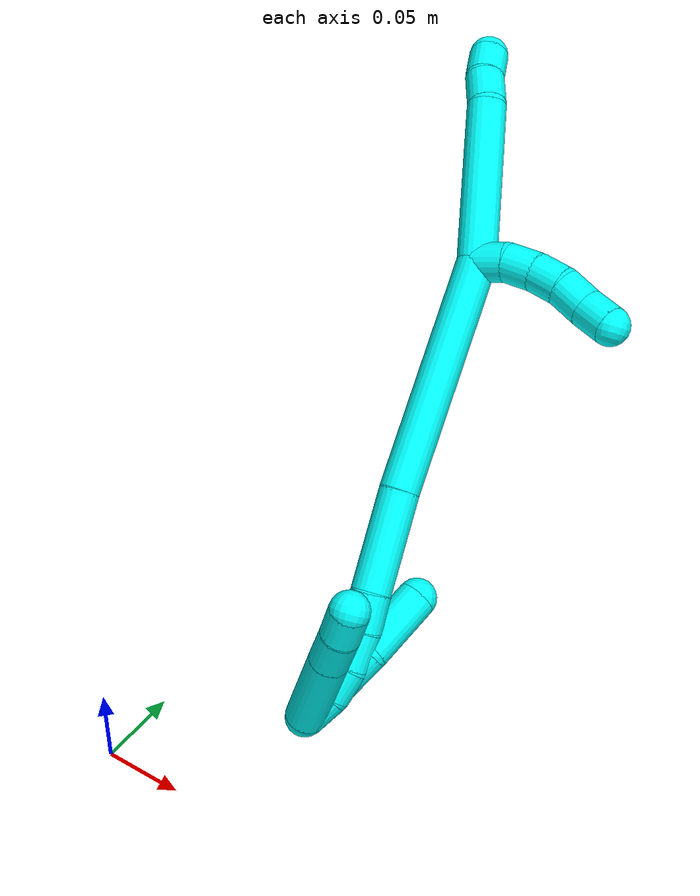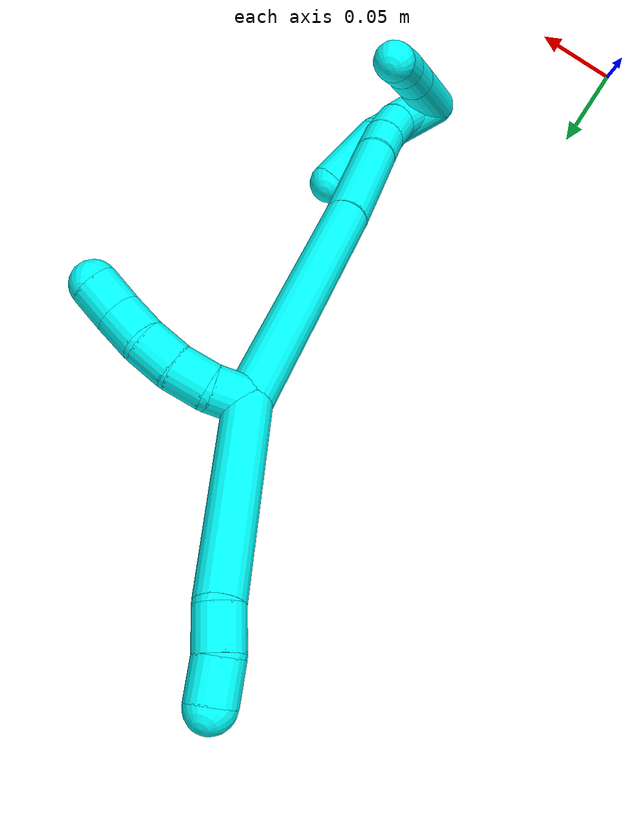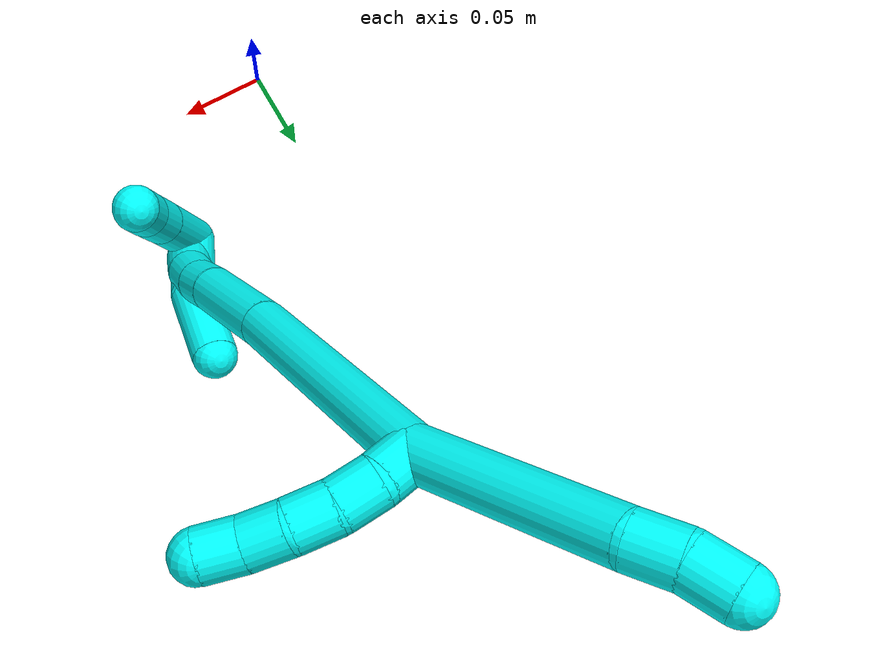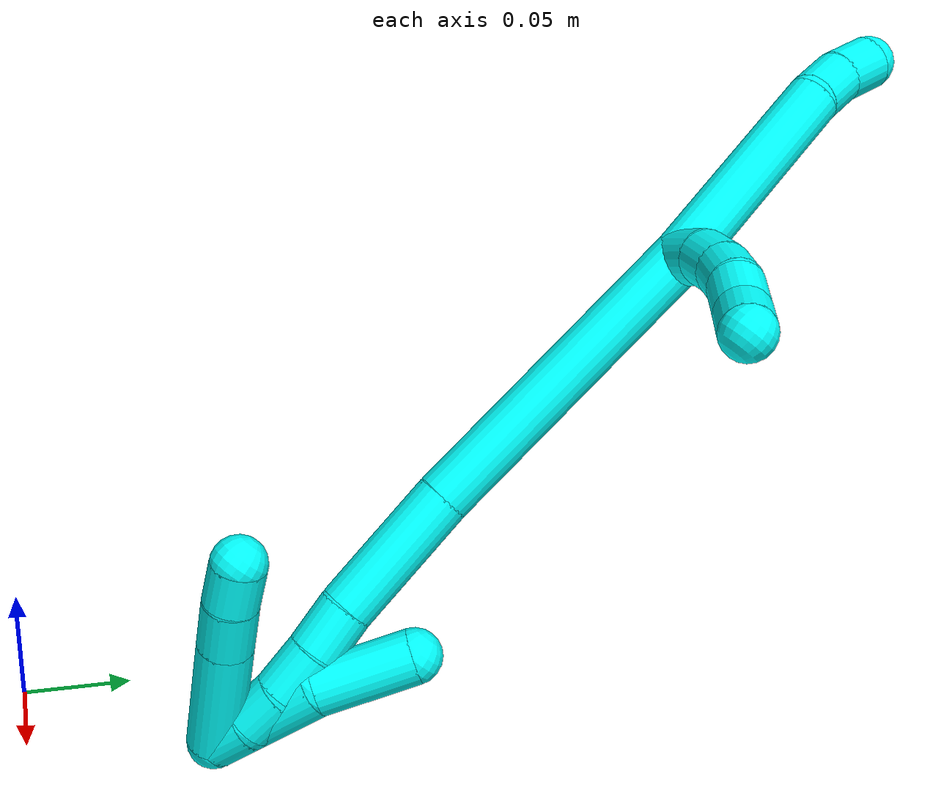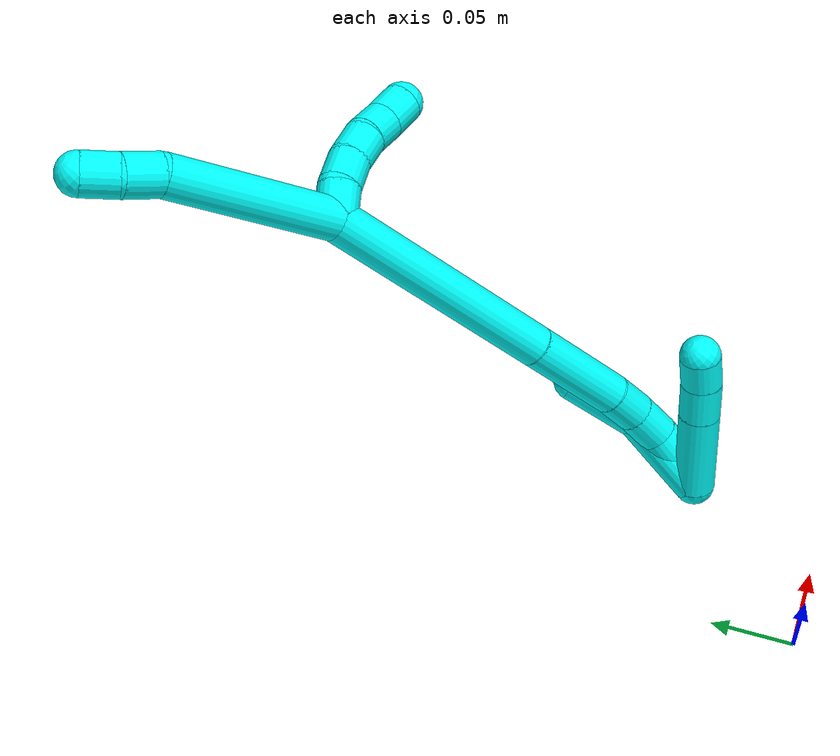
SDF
<sdf version="1.7">
 <world name="default">
  <model name="3">
   <static>0</static>
   <link name="3">
    <collision name="collision-cylinder-e_1_2_8">
     <pose>-0.019851 -0.001144 0.049362 0.023162 -0.382265 -0.004482</pose>
     <geometry><cylinder><radius>0.0125</radius><length>0.106432</length></cylinder></geometry>
     <surface>
      <friction><ode><mu>1.16</mu><mu2>1.16</mu2><slip1>0</slip1><slip2>0</slip2></ode></friction>
      <contact><ode><kp>1e+06</kp><kd>1</kd><max_vel>0</max_vel><min_depth>0.001</min_depth></ode></contact>
     </surface>
    </collision>
    <visual name="visual-cylinder-e_1_2_8">
     <pose>-0.019851 -0.001144 0.049362 0.023162 -0.382265 -0.004482</pose>
     <geometry><cylinder><radius>0.0125</radius><length>0.106432</length></cylinder></geometry>
     <material><ambient>0.003922 1 0.996078 1</ambient></material>
    </visual>
    <collision name="collision-cylinder-e_2_8_9">
     <pose>-0.04646 -0.001979 0.107542 -0.034911 -0.653587 0.011834</pose>
     <geometry><cylinder><radius>0.0125</radius><length>0.02223</length></cylinder></geometry>
     <surface>
      <friction><ode><mu>1.16</mu><mu2>1.16</mu2><slip1>0</slip1><slip2>0</slip2></ode></friction>
      <contact><ode><kp>1e+06</kp><kd>1</kd><max_vel>0</max_vel><min_depth>0.001</min_depth></ode></contact>
     </surface>
    </collision>
    <visual name="visual-cylinder-e_2_8_9">
     <pose>-0.04646 -0.001979 0.107542 -0.034911 -0.653587 0.011834</pose>
     <geometry><cylinder><radius>0.0125</radius><length>0.02223</length></cylinder></geometry>
     <material><ambient>0.003922 1 0.996078 1</ambient></material>
    </visual>
    <collision name="collision-cylinder-e_3_9_6">
     <pose>-0.059451 0.000909 0.124627 -0.302528 -0.623842 0.098221</pose>
     <geometry><cylinder><radius>0.0125</radius><length>0.021338</length></cylinder></geometry>
     <surface>
      <friction><ode><mu>1.16</mu><mu2>1.16</mu2><slip1>0</slip1><slip2>0</slip2></ode></friction>
      <contact><ode><kp>1e+06</kp><kd>1</kd><max_vel>0</max_vel><min_depth>0.001</min_depth></ode></contact>
     </surface>
    </collision>
    <visual name="visual-cylinder-e_3_9_6">
     <pose>-0.059451 0.000909 0.124627 -0.302528 -0.623842 0.098221</pose>
     <geometry><cylinder><radius>0.0125</radius><length>0.021338</length></cylinder></geometry>
     <material><ambient>0.003922 1 0.996078 1</ambient></material>
    </visual>
    <collision name="collision-cylinder-e_1_2_10">
     <pose>0.007933 0.005642 0.002288 -1.18547 0.91618 -0.641276</pose>
     <geometry><cylinder><radius>0.0125</radius><length>0.02</length></cylinder></geometry>
     <surface>
      <friction><ode><mu>1.16</mu><mu2>1.16</mu2><slip1>0</slip1><slip2>0</slip2></ode></friction>
      <contact><ode><kp>1e+06</kp><kd>1</kd><max_vel>0</max_vel><min_depth>0.001</min_depth></ode></contact>
     </surface>
    </collision>
    <visual name="visual-cylinder-e_1_2_10">
     <pose>0.007933 0.005642 0.002288 -1.18547 0.91618 -0.641276</pose>
     <geometry><cylinder><radius>0.0125</radius><length>0.02</length></cylinder></geometry>
     <material><ambient>0.003922 1 0.996078 1</ambient></material>
    </visual>
    <collision name="collision-cylinder-e_2_10_11">
     <pose>0.023731 0.017426 0.00393 -1.67573 0.905184 -0.990513</pose>
     <geometry><cylinder><radius>0.0125</radius><length>0.02</length></cylinder></geometry>
     <surface>
      <friction><ode><mu>1.16</mu><mu2>1.16</mu2><slip1>0</slip1><slip2>0</slip2></ode></friction>
      <contact><ode><kp>1e+06</kp><kd>1</kd><max_vel>0</max_vel><min_depth>0.001</min_depth></ode></contact>
     </surface>
    </collision>
    <visual name="visual-cylinder-e_2_10_11">
     <pose>0.023731 0.017426 0.00393 -1.67573 0.905184 -0.990513</pose>
     <geometry><cylinder><radius>0.0125</radius><length>0.02</length></cylinder></geometry>
     <material><ambient>0.003922 1 0.996078 1</ambient></material>
    </visual>
    <collision name="collision-cylinder-e_3_11_12">
     <pose>0.0398 0.028851 0.001099 -1.96277 0.962102 -1.32553</pose>
     <geometry><cylinder><radius>0.0125</radius><length>0.02</length></cylinder></geometry>
     <surface>
      <friction><ode><mu>1.16</mu><mu2>1.16</mu2><slip1>0</slip1><slip2>0</slip2></ode></friction>
      <contact><ode><kp>1e+06</kp><kd>1</kd><max_vel>0</max_vel><min_depth>0.001</min_depth></ode></contact>
     </surface>
    </collision>
    <visual name="visual-cylinder-e_3_11_12">
     <pose>0.0398 0.028851 0.001099 -1.96277 0.962102 -1.32553</pose>
     <geometry><cylinder><radius>0.0125</radius><length>0.02</length></cylinder></geometry>
     <material><ambient>0.003922 1 0.996078 1</ambient></material>
    </visual>
    <collision name="collision-cylinder-e_4_12_13">
     <pose>0.055211 0.039564 -0.005397 -2.24202 0.804825 -1.44514</pose>
     <geometry><cylinder><radius>0.0125</radius><length>0.02</length></cylinder></geometry>
     <surface>
      <friction><ode><mu>1.16</mu><mu2>1.16</mu2><slip1>0</slip1><slip2>0</slip2></ode></friction>
      <contact><ode><kp>1e+06</kp><kd>1</kd><max_vel>0</max_vel><min_depth>0.001</min_depth></ode></contact>
     </surface>
    </collision>
    <visual name="visual-cylinder-e_4_12_13">
     <pose>0.055211 0.039564 -0.005397 -2.24202 0.804825 -1.44514</pose>
     <geometry><cylinder><radius>0.0125</radius><length>0.02</length></cylinder></geometry>
     <material><ambient>0.003922 1 0.996078 1</ambient></material>
    </visual>
    <collision name="collision-cylinder-e_5_13_5">
     <pose>0.070817 0.049218 -0.013115 -2.24926 0.997053 -1.69979</pose>
     <geometry><cylinder><radius>0.0125</radius><length>0.02</length></cylinder></geometry>
     <surface>
      <friction><ode><mu>1.16</mu><mu2>1.16</mu2><slip1>0</slip1><slip2>0</slip2></ode></friction>
      <contact><ode><kp>1e+06</kp><kd>1</kd><max_vel>0</max_vel><min_depth>0.001</min_depth></ode></contact>
     </surface>
    </collision>
    <visual name="visual-cylinder-e_5_13_5">
     <pose>0.070817 0.049218 -0.013115 -2.24926 0.997053 -1.69979</pose>
     <geometry><cylinder><radius>0.0125</radius><length>0.02</length></cylinder></geometry>
     <material><ambient>0.003922 1 0.996078 1</ambient></material>
    </visual>
    <collision name="collision-cylinder-e_1_2_14">
     <pose>0.00811 -0.00809 -0.073503 3.03197 0.109241 1.5673</pose>
     <geometry><cylinder><radius>0.0125</radius><length>0.148781</length></cylinder></geometry>
     <surface>
      <friction><ode><mu>1.16</mu><mu2>1.16</mu2><slip1>0</slip1><slip2>0</slip2></ode></friction>
      <contact><ode><kp>1e+06</kp><kd>1</kd><max_vel>0</max_vel><min_depth>0.001</min_depth></ode></contact>
     </surface>
    </collision>
    <visual name="visual-cylinder-e_1_2_14">
     <pose>0.00811 -0.00809 -0.073503 3.03197 0.109241 1.5673</pose>
     <geometry><cylinder><radius>0.0125</radius><length>0.148781</length></cylinder></geometry>
     <material><ambient>0.003922 1 0.996078 1</ambient></material>
    </visual>
    <collision name="collision-cylinder-e_2_14_15">
     <pose>0.019659 -0.017708 -0.178467 3.09308 0.108723 2.30273</pose>
     <geometry><cylinder><radius>0.0125</radius><length>0.063369</length></cylinder></geometry>
     <surface>
      <friction><ode><mu>1.16</mu><mu2>1.16</mu2><slip1>0</slip1><slip2>0</slip2></ode></friction>
      <contact><ode><kp>1e+06</kp><kd>1</kd><max_vel>0</max_vel><min_depth>0.001</min_depth></ode></contact>
     </surface>
    </collision>
    <visual name="visual-cylinder-e_2_14_15">
     <pose>0.019659 -0.017708 -0.178467 3.09308 0.108723 2.30273</pose>
     <geometry><cylinder><radius>0.0125</radius><length>0.063369</length></cylinder></geometry>
     <material><ambient>0.003922 1 0.996078 1</ambient></material>
    </visual>
    <collision name="collision-cylinder-e_3_15_16">
     <pose>0.023508 -0.018834 -0.221617 -3.10729 0.035105 -1.5939</pose>
     <geometry><cylinder><radius>0.0125</radius><length>0.023407</length></cylinder></geometry>
     <surface>
      <friction><ode><mu>1.16</mu><mu2>1.16</mu2><slip1>0</slip1><slip2>0</slip2></ode></friction>
      <contact><ode><kp>1e+06</kp><kd>1</kd><max_vel>0</max_vel><min_depth>0.001</min_depth></ode></contact>
     </surface>
    </collision>
    <visual name="visual-cylinder-e_3_15_16">
     <pose>0.023508 -0.018834 -0.221617 -3.10729 0.035105 -1.5939</pose>
     <geometry><cylinder><radius>0.0125</radius><length>0.023407</length></cylinder></geometry>
     <material><ambient>0.003922 1 0.996078 1</ambient></material>
    </visual>
    <collision name="collision-cylinder-e_4_16_17">
     <pose>0.02337 -0.019003 -0.245072 3.0932 -0.046507 -1.53113</pose>
     <geometry><cylinder><radius>0.0125</radius><length>0.023586</length></cylinder></geometry>
     <surface>
      <friction><ode><mu>1.16</mu><mu2>1.16</mu2><slip1>0</slip1><slip2>0</slip2></ode></friction>
      <contact><ode><kp>1e+06</kp><kd>1</kd><max_vel>0</max_vel><min_depth>0.001</min_depth></ode></contact>
     </surface>
    </collision>
    <visual name="visual-cylinder-e_4_16_17">
     <pose>0.02337 -0.019003 -0.245072 3.0932 -0.046507 -1.53113</pose>
     <geometry><cylinder><radius>0.0125</radius><length>0.023586</length></cylinder></geometry>
     <material><ambient>0.003922 1 0.996078 1</ambient></material>
    </visual>
    <collision name="collision-cylinder-e_5_17_18">
     <pose>0.020799 -0.021633 -0.266593 2.93341 -0.200229 -1.53157</pose>
     <geometry><cylinder><radius>0.0125</radius><length>0.020345</length></cylinder></geometry>
     <surface>
      <friction><ode><mu>1.16</mu><mu2>1.16</mu2><slip1>0</slip1><slip2>0</slip2></ode></friction>
      <contact><ode><kp>1e+06</kp><kd>1</kd><max_vel>0</max_vel><min_depth>0.001</min_depth></ode></contact>
     </surface>
    </collision>
    <visual name="visual-cylinder-e_5_17_18">
     <pose>0.020799 -0.021633 -0.266593 2.93341 -0.200229 -1.53157</pose>
     <geometry><cylinder><radius>0.0125</radius><length>0.020345</length></cylinder></geometry>
     <material><ambient>0.003922 1 0.996078 1</ambient></material>
    </visual>
    <collision name="collision-cylinder-e_6_18_1">
     <pose>0.015597 -0.028125 -0.285033 2.6699 -0.315107 -1.16825</pose>
     <geometry><cylinder><radius>0.0125</radius><length>0.020512</length></cylinder></geometry>
     <surface>
      <friction><ode><mu>1.16</mu><mu2>1.16</mu2><slip1>0</slip1><slip2>0</slip2></ode></friction>
      <contact><ode><kp>1e+06</kp><kd>1</kd><max_vel>0</max_vel><min_depth>0.001</min_depth></ode></contact>
     </surface>
    </collision>
    <visual name="visual-cylinder-e_6_18_1">
     <pose>0.015597 -0.028125 -0.285033 2.6699 -0.315107 -1.16825</pose>
     <geometry><cylinder><radius>0.0125</radius><length>0.020512</length></cylinder></geometry>
     <material><ambient>0.003922 1 0.996078 1</ambient></material>
    </visual>
    <collision name="collision-cylinder-e_1_1_19">
     <pose>0.017513 -0.020533 -0.269581 -0.462085 0.186721 -0.044046</pose>
     <geometry><cylinder><radius>0.0125</radius><length>0.054887</length></cylinder></geometry>
     <surface>
      <friction><ode><mu>1.16</mu><mu2>1.16</mu2><slip1>0</slip1><slip2>0</slip2></ode></friction>
      <contact><ode><kp>1e+06</kp><kd>1</kd><max_vel>0</max_vel><min_depth>0.001</min_depth></ode></contact>
     </surface>
    </collision>
    <visual name="visual-cylinder-e_1_1_19">
     <pose>0.017513 -0.020533 -0.269581 -0.462085 0.186721 -0.044046</pose>
     <geometry><cylinder><radius>0.0125</radius><length>0.054887</length></cylinder></geometry>
     <material><ambient>0.003922 1 0.996078 1</ambient></material>
    </visual>
    <collision name="collision-cylinder-e_2_19_4">
     <pose>0.020014 0.00393 -0.226807 -0.588656 -0.115224 0.034963</pose>
     <geometry><cylinder><radius>0.0125</radius><length>0.045113</length></cylinder></geometry>
     <surface>
      <friction><ode><mu>1.16</mu><mu2>1.16</mu2><slip1>0</slip1><slip2>0</slip2></ode></friction>
      <contact><ode><kp>1e+06</kp><kd>1</kd><max_vel>0</max_vel><min_depth>0.001</min_depth></ode></contact>
     </surface>
    </collision>
    <visual name="visual-cylinder-e_2_19_4">
     <pose>0.020014 0.00393 -0.226807 -0.588656 -0.115224 0.034963</pose>
     <geometry><cylinder><radius>0.0125</radius><length>0.045113</length></cylinder></geometry>
     <material><ambient>0.003922 1 0.996078 1</ambient></material>
    </visual>
    <collision name="collision-cylinder-e_1_1_20">
     <pose>0.029205 -0.039576 -0.272366 0.317659 0.641457 0.106322</pose>
     <geometry><cylinder><radius>0.0125</radius><length>0.056109</length></cylinder></geometry>
     <surface>
      <friction><ode><mu>1.16</mu><mu2>1.16</mu2><slip1>0</slip1><slip2>0</slip2></ode></friction>
      <contact><ode><kp>1e+06</kp><kd>1</kd><max_vel>0</max_vel><min_depth>0.001</min_depth></ode></contact>
     </surface>
    </collision>
    <visual name="visual-cylinder-e_1_1_20">
     <pose>0.029205 -0.039576 -0.272366 0.317659 0.641457 0.106322</pose>
     <geometry><cylinder><radius>0.0125</radius><length>0.056109</length></cylinder></geometry>
     <material><ambient>0.003922 1 0.996078 1</ambient></material>
    </visual>
    <collision name="collision-cylinder-e_2_20_21">
     <pose>0.053171 -0.049444 -0.241938 0.303979 0.646596 0.102551</pose>
     <geometry><cylinder><radius>0.0125</radius><length>0.023832</length></cylinder></geometry>
     <surface>
      <friction><ode><mu>1.16</mu><mu2>1.16</mu2><slip1>0</slip1><slip2>0</slip2></ode></friction>
      <contact><ode><kp>1e+06</kp><kd>1</kd><max_vel>0</max_vel><min_depth>0.001</min_depth></ode></contact>
     </surface>
    </collision>
    <visual name="visual-cylinder-e_2_20_21">
     <pose>0.053171 -0.049444 -0.241938 0.303979 0.646596 0.102551</pose>
     <geometry><cylinder><radius>0.0125</radius><length>0.023832</length></cylinder></geometry>
     <material><ambient>0.003922 1 0.996078 1</ambient></material>
    </visual>
    <collision name="collision-cylinder-e_3_21_3">
     <pose>0.065569 -0.054555 -0.224603 0.267602 0.547279 0.075526</pose>
     <geometry><cylinder><radius>0.0125</radius><length>0.020059</length></cylinder></geometry>
     <surface>
      <friction><ode><mu>1.16</mu><mu2>1.16</mu2><slip1>0</slip1><slip2>0</slip2></ode></friction>
      <contact><ode><kp>1e+06</kp><kd>1</kd><max_vel>0</max_vel><min_depth>0.001</min_depth></ode></contact>
     </surface>
    </collision>
    <visual name="visual-cylinder-e_3_21_3">
     <pose>0.065569 -0.054555 -0.224603 0.267602 0.547279 0.075526</pose>
     <geometry><cylinder><radius>0.0125</radius><length>0.020059</length></cylinder></geometry>
     <material><ambient>0.003922 1 0.996078 1</ambient></material>
    </visual>
    <collision name="collision-sphere-3">
     <pose>0.070788 -0.05682 -0.216344 0 -0 0</pose>
     <geometry><sphere><radius>0.0125</radius></sphere></geometry>
     <surface>
      <friction><ode><mu>1.16</mu><mu2>1.16</mu2><slip1>0</slip1><slip2>0</slip2></ode></friction>
      <contact><ode><kp>1e+06</kp><kd>1</kd><max_vel>0</max_vel><min_depth>0.001</min_depth></ode></contact>
     </surface>
    </collision>
    <visual name="visual-sphere-3">
     <pose>0.070788 -0.05682 -0.216344 0 -0 0</pose>
     <geometry><sphere><radius>0.0125</radius></sphere></geometry>
     <material><ambient>0.003922 1 0.996078 1</ambient></material>
    </visual>
    <collision name="collision-sphere-21">
     <pose>0.06035 -0.052291 -0.232863 0 -0 0</pose>
     <geometry><sphere><radius>0.0125</radius></sphere></geometry>
     <surface>
      <friction><ode><mu>1.16</mu><mu2>1.16</mu2><slip1>0</slip1><slip2>0</slip2></ode></friction>
      <contact><ode><kp>1e+06</kp><kd>1</kd><max_vel>0</max_vel><min_depth>0.001</min_depth></ode></contact>
     </surface>
    </collision>
    <visual name="visual-sphere-21">
     <pose>0.06035 -0.052291 -0.232863 0 -0 0</pose>
     <geometry><sphere><radius>0.0125</radius></sphere></geometry>
     <material><ambient>0.003922 1 0.996078 1</ambient></material>
    </visual>
    <collision name="collision-sphere-20">
     <pose>0.045992 -0.046597 -0.251012 0 -0 0</pose>
     <geometry><sphere><radius>0.0125</radius></sphere></geometry>
     <surface>
      <friction><ode><mu>1.16</mu><mu2>1.16</mu2><slip1>0</slip1><slip2>0</slip2></ode></friction>
      <contact><ode><kp>1e+06</kp><kd>1</kd><max_vel>0</max_vel><min_depth>0.001</min_depth></ode></contact>
     </surface>
    </collision>
    <visual name="visual-sphere-20">
     <pose>0.045992 -0.046597 -0.251012 0 -0 0</pose>
     <geometry><sphere><radius>0.0125</radius></sphere></geometry>
     <material><ambient>0.003922 1 0.996078 1</ambient></material>
    </visual>
    <collision name="collision-sphere-4">
     <pose>0.017421 0.016371 -0.208171 0 -0 0</pose>
     <geometry><sphere><radius>0.0125</radius></sphere></geometry>
     <surface>
      <friction><ode><mu>1.16</mu><mu2>1.16</mu2><slip1>0</slip1><slip2>0</slip2></ode></friction>
      <contact><ode><kp>1e+06</kp><kd>1</kd><max_vel>0</max_vel><min_depth>0.001</min_depth></ode></contact>
     </surface>
    </collision>
    <visual name="visual-sphere-4">
     <pose>0.017421 0.016371 -0.208171 0 -0 0</pose>
     <geometry><sphere><radius>0.0125</radius></sphere></geometry>
     <material><ambient>0.003922 1 0.996078 1</ambient></material>
    </visual>
    <collision name="collision-sphere-11">
     <pose>0.031596 0.023567 0.003283 0 -0 0</pose>
     <geometry><sphere><radius>0.0125</radius></sphere></geometry>
     <surface>
      <friction><ode><mu>1.16</mu><mu2>1.16</mu2><slip1>0</slip1><slip2>0</slip2></ode></friction>
      <contact><ode><kp>1e+06</kp><kd>1</kd><max_vel>0</max_vel><min_depth>0.001</min_depth></ode></contact>
     </surface>
    </collision>
    <visual name="visual-sphere-11">
     <pose>0.031596 0.023567 0.003283 0 -0 0</pose>
     <geometry><sphere><radius>0.0125</radius></sphere></geometry>
     <material><ambient>0.003922 1 0.996078 1</ambient></material>
    </visual>
    <collision name="collision-sphere-10">
     <pose>0.015866 0.011284 0.004577 0 -0 0</pose>
     <geometry><sphere><radius>0.0125</radius></sphere></geometry>
     <surface>
      <friction><ode><mu>1.16</mu><mu2>1.16</mu2><slip1>0</slip1><slip2>0</slip2></ode></friction>
      <contact><ode><kp>1e+06</kp><kd>1</kd><max_vel>0</max_vel><min_depth>0.001</min_depth></ode></contact>
     </surface>
    </collision>
    <visual name="visual-sphere-10">
     <pose>0.015866 0.011284 0.004577 0 -0 0</pose>
     <geometry><sphere><radius>0.0125</radius></sphere></geometry>
     <material><ambient>0.003922 1 0.996078 1</ambient></material>
    </visual>
    <collision name="collision-sphere-6">
     <pose>-0.065683 0.003489 0.132894 0 -0 0</pose>
     <geometry><sphere><radius>0.0125</radius></sphere></geometry>
     <surface>
      <friction><ode><mu>1.16</mu><mu2>1.16</mu2><slip1>0</slip1><slip2>0</slip2></ode></friction>
      <contact><ode><kp>1e+06</kp><kd>1</kd><max_vel>0</max_vel><min_depth>0.001</min_depth></ode></contact>
     </surface>
    </collision>
    <visual name="visual-sphere-6">
     <pose>-0.065683 0.003489 0.132894 0 -0 0</pose>
     <geometry><sphere><radius>0.0125</radius></sphere></geometry>
     <material><ambient>0.003922 1 0.996078 1</ambient></material>
    </visual>
    <collision name="collision-sphere-9">
     <pose>-0.053218 -0.001671 0.116361 0 -0 0</pose>
     <geometry><sphere><radius>0.0125</radius></sphere></geometry>
     <surface>
      <friction><ode><mu>1.16</mu><mu2>1.16</mu2><slip1>0</slip1><slip2>0</slip2></ode></friction>
      <contact><ode><kp>1e+06</kp><kd>1</kd><max_vel>0</max_vel><min_depth>0.001</min_depth></ode></contact>
     </surface>
    </collision>
    <visual name="visual-sphere-9">
     <pose>-0.053218 -0.001671 0.116361 0 -0 0</pose>
     <geometry><sphere><radius>0.0125</radius></sphere></geometry>
     <material><ambient>0.003922 1 0.996078 1</ambient></material>
    </visual>
    <collision name="collision-sphere-2">
     <geometry><sphere><radius>0.0125</radius></sphere></geometry>
     <surface>
      <friction><ode><mu>1.16</mu><mu2>1.16</mu2><slip1>0</slip1><slip2>0</slip2></ode></friction>
      <contact><ode><kp>1e+06</kp><kd>1</kd><max_vel>0</max_vel><min_depth>0.001</min_depth></ode></contact>
     </surface>
    </collision>
    <visual name="visual-sphere-2">
     <geometry><sphere><radius>0.0125</radius></sphere></geometry>
     <material><ambient>0.003922 1 0.996078 1</ambient></material>
    </visual>
    <collision name="collision-sphere-19">
     <pose>0.022607 -0.008511 -0.245443 0 -0 0</pose>
     <geometry><sphere><radius>0.0125</radius></sphere></geometry>
     <surface>
      <friction><ode><mu>1.16</mu><mu2>1.16</mu2><slip1>0</slip1><slip2>0</slip2></ode></friction>
      <contact><ode><kp>1e+06</kp><kd>1</kd><max_vel>0</max_vel><min_depth>0.001</min_depth></ode></contact>
     </surface>
    </collision>
    <visual name="visual-sphere-19">
     <pose>0.022607 -0.008511 -0.245443 0 -0 0</pose>
     <geometry><sphere><radius>0.0125</radius></sphere></geometry>
     <material><ambient>0.003922 1 0.996078 1</ambient></material>
    </visual>
    <collision name="collision-sphere-8">
     <pose>-0.039701 -0.002287 0.098723 0 -0 0</pose>
     <geometry><sphere><radius>0.0125</radius></sphere></geometry>
     <surface>
      <friction><ode><mu>1.16</mu><mu2>1.16</mu2><slip1>0</slip1><slip2>0</slip2></ode></friction>
      <contact><ode><kp>1e+06</kp><kd>1</kd><max_vel>0</max_vel><min_depth>0.001</min_depth></ode></contact>
     </surface>
    </collision>
    <visual name="visual-sphere-8">
     <pose>-0.039701 -0.002287 0.098723 0 -0 0</pose>
     <geometry><sphere><radius>0.0125</radius></sphere></geometry>
     <material><ambient>0.003922 1 0.996078 1</ambient></material>
    </visual>
    <collision name="collision-sphere-12">
     <pose>0.048004 0.034136 -0.001086 0 -0 0</pose>
     <geometry><sphere><radius>0.0125</radius></sphere></geometry>
     <surface>
      <friction><ode><mu>1.16</mu><mu2>1.16</mu2><slip1>0</slip1><slip2>0</slip2></ode></friction>
      <contact><ode><kp>1e+06</kp><kd>1</kd><max_vel>0</max_vel><min_depth>0.001</min_depth></ode></contact>
     </surface>
    </collision>
    <visual name="visual-sphere-12">
     <pose>0.048004 0.034136 -0.001086 0 -0 0</pose>
     <geometry><sphere><radius>0.0125</radius></sphere></geometry>
     <material><ambient>0.003922 1 0.996078 1</ambient></material>
    </visual>
    <collision name="collision-sphere-13">
     <pose>0.062419 0.044993 -0.009709 0 -0 0</pose>
     <geometry><sphere><radius>0.0125</radius></sphere></geometry>
     <surface>
      <friction><ode><mu>1.16</mu><mu2>1.16</mu2><slip1>0</slip1><slip2>0</slip2></ode></friction>
      <contact><ode><kp>1e+06</kp><kd>1</kd><max_vel>0</max_vel><min_depth>0.001</min_depth></ode></contact>
     </surface>
    </collision>
    <visual name="visual-sphere-13">
     <pose>0.062419 0.044993 -0.009709 0 -0 0</pose>
     <geometry><sphere><radius>0.0125</radius></sphere></geometry>
     <material><ambient>0.003922 1 0.996078 1</ambient></material>
    </visual>
    <collision name="collision-sphere-5">
     <pose>0.079216 0.053444 -0.016522 0 -0 0</pose>
     <geometry><sphere><radius>0.0125</radius></sphere></geometry>
     <surface>
      <friction><ode><mu>1.16</mu><mu2>1.16</mu2><slip1>0</slip1><slip2>0</slip2></ode></friction>
      <contact><ode><kp>1e+06</kp><kd>1</kd><max_vel>0</max_vel><min_depth>0.001</min_depth></ode></contact>
     </surface>
    </collision>
    <visual name="visual-sphere-5">
     <pose>0.079216 0.053444 -0.016522 0 -0 0</pose>
     <geometry><sphere><radius>0.0125</radius></sphere></geometry>
     <material><ambient>0.003922 1 0.996078 1</ambient></material>
    </visual>
    <collision name="collision-sphere-14">
     <pose>0.016221 -0.01618 -0.147007 0 -0 0</pose>
     <geometry><sphere><radius>0.0125</radius></sphere></geometry>
     <surface>
      <friction><ode><mu>1.16</mu><mu2>1.16</mu2><slip1>0</slip1><slip2>0</slip2></ode></friction>
      <contact><ode><kp>1e+06</kp><kd>1</kd><max_vel>0</max_vel><min_depth>0.001</min_depth></ode></contact>
     </surface>
    </collision>
    <visual name="visual-sphere-14">
     <pose>0.016221 -0.01618 -0.147007 0 -0 0</pose>
     <geometry><sphere><radius>0.0125</radius></sphere></geometry>
     <material><ambient>0.003922 1 0.996078 1</ambient></material>
    </visual>
    <collision name="collision-sphere-15">
     <pose>0.023097 -0.019235 -0.209928 0 -0 0</pose>
     <geometry><sphere><radius>0.0125</radius></sphere></geometry>
     <surface>
      <friction><ode><mu>1.16</mu><mu2>1.16</mu2><slip1>0</slip1><slip2>0</slip2></ode></friction>
      <contact><ode><kp>1e+06</kp><kd>1</kd><max_vel>0</max_vel><min_depth>0.001</min_depth></ode></contact>
     </surface>
    </collision>
    <visual name="visual-sphere-15">
     <pose>0.023097 -0.019235 -0.209928 0 -0 0</pose>
     <geometry><sphere><radius>0.0125</radius></sphere></geometry>
     <material><ambient>0.003922 1 0.996078 1</ambient></material>
    </visual>
    <collision name="collision-sphere-16">
     <pose>0.023918 -0.018433 -0.233306 0 -0 0</pose>
     <geometry><sphere><radius>0.0125</radius></sphere></geometry>
     <surface>
      <friction><ode><mu>1.16</mu><mu2>1.16</mu2><slip1>0</slip1><slip2>0</slip2></ode></friction>
      <contact><ode><kp>1e+06</kp><kd>1</kd><max_vel>0</max_vel><min_depth>0.001</min_depth></ode></contact>
     </surface>
    </collision>
    <visual name="visual-sphere-16">
     <pose>0.023918 -0.018433 -0.233306 0 -0 0</pose>
     <geometry><sphere><radius>0.0125</radius></sphere></geometry>
     <material><ambient>0.003922 1 0.996078 1</ambient></material>
    </visual>
    <collision name="collision-sphere-17">
     <pose>0.022822 -0.019573 -0.256839 0 -0 0</pose>
     <geometry><sphere><radius>0.0125</radius></sphere></geometry>
     <surface>
      <friction><ode><mu>1.16</mu><mu2>1.16</mu2><slip1>0</slip1><slip2>0</slip2></ode></friction>
      <contact><ode><kp>1e+06</kp><kd>1</kd><max_vel>0</max_vel><min_depth>0.001</min_depth></ode></contact>
     </surface>
    </collision>
    <visual name="visual-sphere-17">
     <pose>0.022822 -0.019573 -0.256839 0 -0 0</pose>
     <geometry><sphere><radius>0.0125</radius></sphere></geometry>
     <material><ambient>0.003922 1 0.996078 1</ambient></material>
    </visual>
    <collision name="collision-sphere-18">
     <pose>0.018775 -0.023694 -0.276347 0 -0 0</pose>
     <geometry><sphere><radius>0.0125</radius></sphere></geometry>
     <surface>
      <friction><ode><mu>1.16</mu><mu2>1.16</mu2><slip1>0</slip1><slip2>0</slip2></ode></friction>
      <contact><ode><kp>1e+06</kp><kd>1</kd><max_vel>0</max_vel><min_depth>0.001</min_depth></ode></contact>
     </surface>
    </collision>
    <visual name="visual-sphere-18">
     <pose>0.018775 -0.023694 -0.276347 0 -0 0</pose>
     <geometry><sphere><radius>0.0125</radius></sphere></geometry>
     <material><ambient>0.003922 1 0.996078 1</ambient></material>
    </visual>
    <collision name="collision-sphere-1">
     <pose>0.012418 -0.032555 -0.293719 0 -0 0</pose>
     <geometry><sphere><radius>0.0125</radius></sphere></geometry>
     <surface>
      <friction><ode><mu>1.16</mu><mu2>1.16</mu2><slip1>0</slip1><slip2>0</slip2></ode></friction>
      <contact><ode><kp>1e+06</kp><kd>1</kd><max_vel>0</max_vel><min_depth>0.001</min_depth></ode></contact>
     </surface>
    </collision>
    <visual name="visual-sphere-1">
     <pose>0.012418 -0.032555 -0.293719 0 -0 0</pose>
     <geometry><sphere><radius>0.0125</radius></sphere></geometry>
     <material><ambient>0.003922 1 0.996078 1</ambient></material>
    </visual>
    <inertial>
     <pose>0.013224 -0.009343 -0.113314 0 -0 0</pose>
     <mass>0.75</mass>
     <inertia>
      <ixx>0.000422</ixx>
      <ixy>0</ixy>
      <ixz>0</ixz>
      <iyy>0.000463</iyy>
      <iyz>0</iyz>
      <izz>1.1e-05</izz>
     </inertia>
    </inertial>
   </link>
   <pose>0.065097 0.297144 0.212796 -0.569524 -0.452453 -0.448358</pose>
  </model>
 </world>
</sdf>
